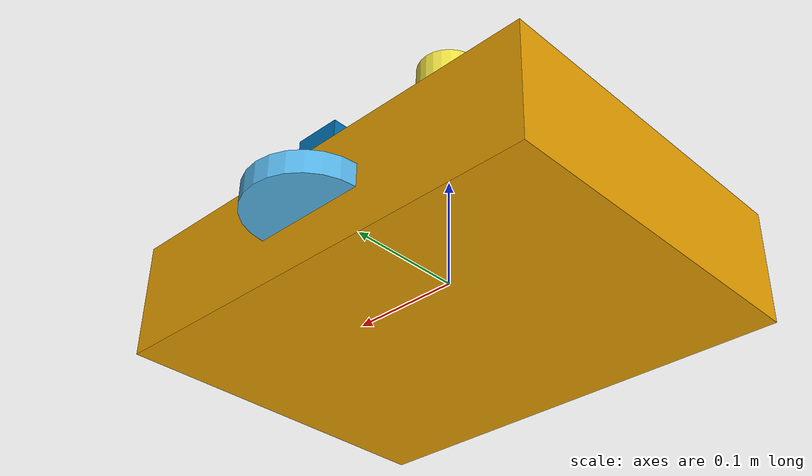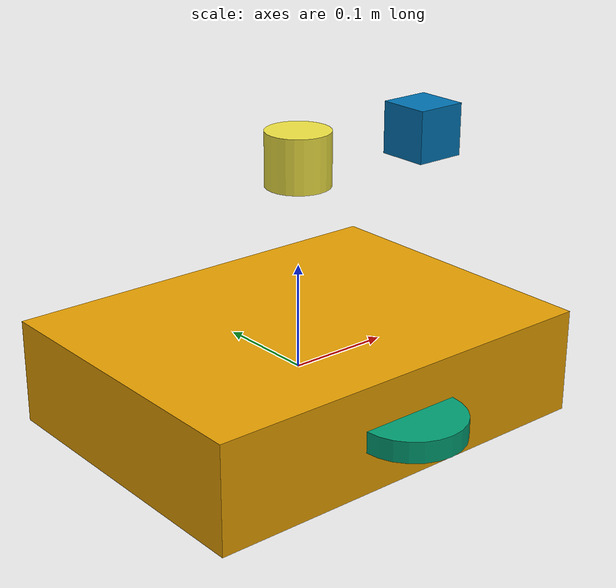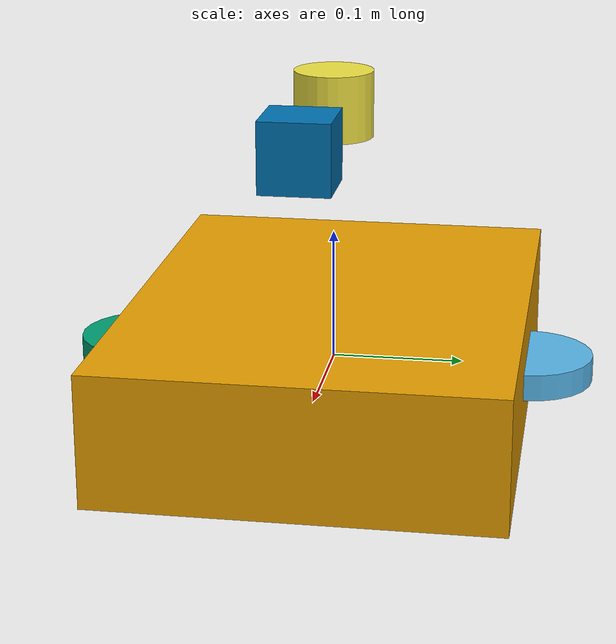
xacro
<?xml version="1.0"?>

<robot xmlns:xacro="http://www.ros.org/wiki/xacro" name="healthcare_robot">

<link name="base_link">
  <visual>
    <geometry>
      <box size="0.4 0.3 0.1"/>
    </geometry>
  </visual>

  <collision>
    <geometry>
      <box size="0.4 0.3 0.1"/>
    </geometry>
  </collision>

  <inertial>
    <mass value="5.0"/>
    <origin xyz="0 0 0"/>
    <inertia ixx="0.1" ixy="0" ixz="0"
             iyy="0.1" iyz="0"
             izz="0.1"/>
  </inertial>
</link>

<!-- LEFT WHEEL -->

<link name="left_wheel">
  <visual>
    <geometry>
      <cylinder radius="0.05" length="0.02"/>
    </geometry>
  </visual>
</link>

<joint name="left_wheel_joint" type="continuous">
  <parent link="base_link"/>
  <child link="left_wheel"/>
  <origin xyz="0 0.15 0"/>
  <axis xyz="0 1 0"/>
</joint>

<!-- RIGHT WHEEL -->

<link name="right_wheel">
  <visual>
    <geometry>
      <cylinder radius="0.05" length="0.02"/>
    </geometry>
  </visual>
</link>

<joint name="right_wheel_joint" type="continuous">
  <parent link="base_link"/>
  <child link="right_wheel"/>
  <origin xyz="0 -0.15 0"/>
  <axis xyz="0 1 0"/>
</joint>

<!-- LIDAR -->

<link name="laser_link">
  <visual>
    <geometry>
      <cylinder radius="0.03" length="0.05"/>
    </geometry>
  </visual>
</link>

<joint name="laser_joint" type="fixed">
  <parent link="base_link"/>
  <child link="laser_link"/>
  <origin xyz="0 0 0.2"/>
</joint>

<!-- DEPTH CAMERA -->

<link name="camera_link">
  <visual>
    <geometry>
      <box size="0.05 0.05 0.05"/>
    </geometry>
  </visual>
</link>

<joint name="camera_joint" type="fixed">
  <parent link="base_link"/>
  <child link="camera_link"/>
  <origin xyz="0.15 0 0.2"/>
</joint>

<gazebo reference="camera_link">
  <sensor name="depth_camera" type="depth">

    <update_rate>30</update_rate>

    <camera>
      <horizontal_fov>1.57</horizontal_fov>

      <image>
        <width>640</width>
        <height>480</height>
        <format>R8G8B8</format>
      </image>

      <clip>
        <near>0.1</near>
        <far>10.0</far>
      </clip>

    </camera>

    <plugin name="camera_controller" filename="libgazebo_ros_camera.so">
      <frame_name>camera_link</frame_name>
    </plugin>

  </sensor>
</gazebo>

<!-- DIFFERENTIAL DRIVE -->

<gazebo>
  <plugin name="diff_drive" filename="libgazebo_ros_diff_drive.so">

    <left_joint>left_wheel_joint</left_joint>
    <right_joint>right_wheel_joint</right_joint>

    <wheel_separation>0.30</wheel_separation>
    <wheel_diameter>0.10</wheel_diameter>

    <publish_odom>true</publish_odom>
    <publish_odom_tf>true</publish_odom_tf>

    <command_topic>cmd_vel</command_topic>
    <odometry_topic>odom</odometry_topic>

  </plugin>
</gazebo>

</robot>
